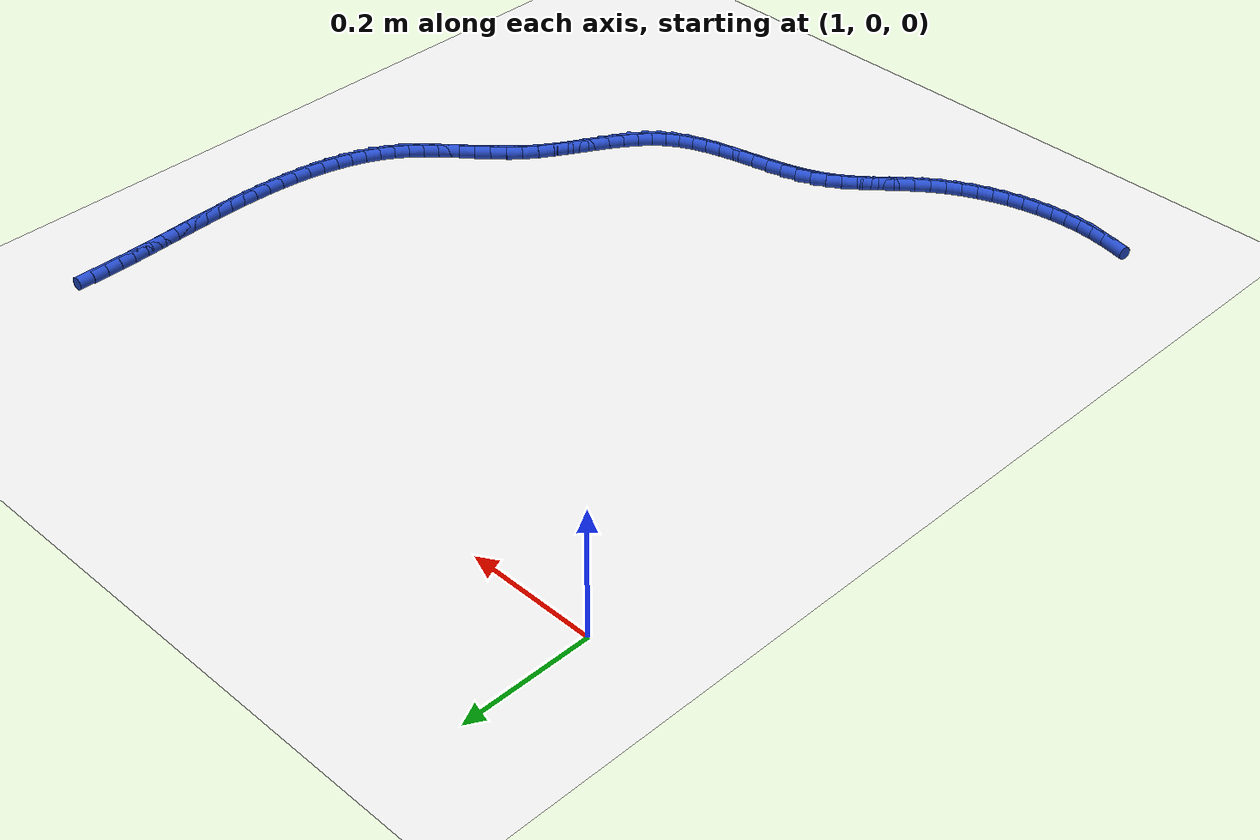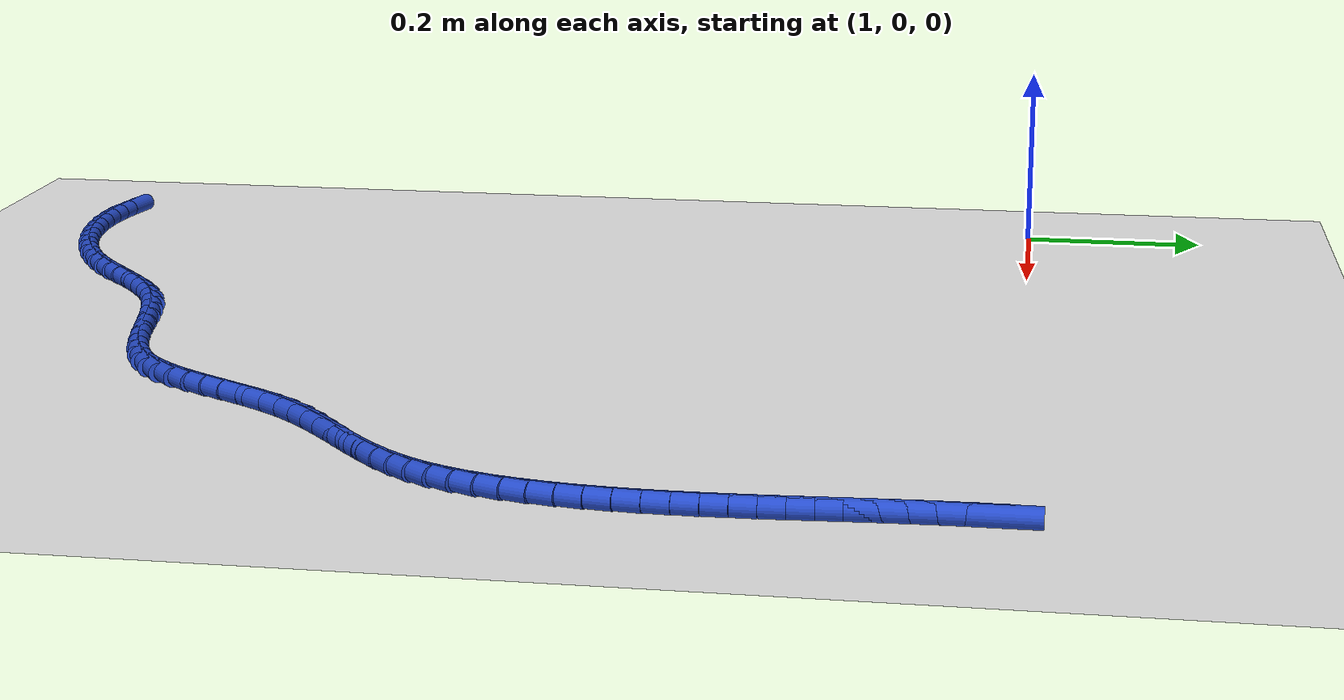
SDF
<sdf version="1.6">
 <world name="default">
  <model name="ground_plane">
   <static>1</static>
   <link name="link">
    <collision name="collision">
     <geometry><plane><normal>0 0 1</normal><size>100 100</size></plane></geometry>
     <surface><friction><ode><mu>100</mu><mu2>50</mu2></ode></friction></surface>
    </collision>
    <visual name="visual">
     <cast_shadows>0</cast_shadows>
     <geometry><plane><normal>0 0 1</normal><size>100 100</size></plane></geometry>
     <material>
      <script><uri>file://media/materials/scripts/gazebo.material</uri><name>Gazebo/WhiteGlow</name></script>
     </material>
    </visual>
   </link>
  </model>
  <model name="line">
   <link name="link_140">
    <pose>2.022038972773728 -0.015050323462694542 0.01 0 1.57 1.5670162806603292</pose>
    <collision name="collision">
     <geometry><cylinder><radius>0.01</radius><length>0.08</length></cylinder></geometry>
    </collision>
    <visual name="visual">
     <material>
      <script><name>Gazebo/Blue</name><uri>file://media/materials/scripts/gazebo.material</uri></script>
     </material>
     <geometry><cylinder><radius>0.01</radius><length>0.08</length></cylinder></geometry>
    </visual>
   </link>
   <link name="link_141">
    <pose>2.0219490826086957 -0.03883038690440917 0.01 0 1.57 -1.5543556046746971</pose>
    <collision name="collision">
     <geometry><cylinder><radius>0.01</radius><length>0.08</length></cylinder></geometry>
    </collision>
    <visual name="visual">
     <material>
      <script><name>Gazebo/Blue</name><uri>file://media/materials/scripts/gazebo.material</uri></script>
     </material>
     <geometry><cylinder><radius>0.01</radius><length>0.08</length></cylinder></geometry>
    </visual>
   </link>
   <link name="link_142">
    <pose>2.022337837206336 -0.062474091099531164 0.01 0 1.57 -1.538193456570751</pose>
    <collision name="collision">
     <geometry><cylinder><radius>0.01</radius><length>0.08</length></cylinder></geometry>
    </collision>
    <visual name="visual">
     <material>
      <script><name>Gazebo/Blue</name><uri>file://media/materials/scripts/gazebo.material</uri></script>
     </material>
     <geometry><cylinder><radius>0.01</radius><length>0.08</length></cylinder></geometry>
    </visual>
   </link>
   <link name="link_143">
    <pose>2.02310553544008 -0.08601269986745534 0.01 0 1.57 -1.5262083538959361</pose>
    <collision name="collision">
     <geometry><cylinder><radius>0.01</radius><length>0.08</length></cylinder></geometry>
    </collision>
    <visual name="visual">
     <material>
      <script><name>Gazebo/Blue</name><uri>file://media/materials/scripts/gazebo.material</uri></script>
     </material>
     <geometry><cylinder><radius>0.01</radius><length>0.08</length></cylinder></geometry>
    </visual>
   </link>
   <link name="link_144">
    <pose>2.024152476183357 -0.10947747702757644 0.01 0 1.57 -1.518480042508574</pose>
    <collision name="collision">
     <geometry><cylinder><radius>0.01</radius><length>0.08</length></cylinder></geometry>
    </collision>
    <visual name="visual">
     <material>
      <script><name>Gazebo/Blue</name><uri>file://media/materials/scripts/gazebo.material</uri></script>
     </material>
     <geometry><cylinder><radius>0.01</radius><length>0.08</length></cylinder></geometry>
    </visual>
   </link>
   <link name="link_145">
    <pose>2.0253789583095974 -0.13289968639928929 0.01 0 1.57 -1.5150543939528607</pose>
    <collision name="collision">
     <geometry><cylinder><radius>0.01</radius><length>0.08</length></cylinder></geometry>
    </collision>
    <visual name="visual">
     <material>
      <script><name>Gazebo/Blue</name><uri>file://media/materials/scripts/gazebo.material</uri></script>
     </material>
     <geometry><cylinder><radius>0.01</radius><length>0.08</length></cylinder></geometry>
    </visual>
   </link>
   <link name="link_146">
    <pose>2.02668528069223 -0.15631059180198933 0.01 0 1.57 -1.515946830316405</pose>
    <collision name="collision">
     <geometry><cylinder><radius>0.01</radius><length>0.08</length></cylinder></geometry>
    </collision>
    <visual name="visual">
     <material>
      <script><name>Gazebo/Blue</name><uri>file://media/materials/scripts/gazebo.material</uri></script>
     </material>
     <geometry><cylinder><radius>0.01</radius><length>0.08</length></cylinder></geometry>
    </visual>
   </link>
   <link name="link_147">
    <pose>2.0279717422046866 -0.17974145705506994 0.01 0 1.57 -1.521143997232985</pose>
    <collision name="collision">
     <geometry><cylinder><radius>0.01</radius><length>0.08</length></cylinder></geometry>
    </collision>
    <visual name="visual">
     <material>
      <script><name>Gazebo/Blue</name><uri>file://media/materials/scripts/gazebo.material</uri></script>
     </material>
     <geometry><cylinder><radius>0.01</radius><length>0.08</length></cylinder></geometry>
    </visual>
   </link>
   <link name="link_148">
    <pose>2.0291386417203956 -0.20322354597792655 0.01 0 1.57 -1.5306035377876541</pose>
    <collision name="collision">
     <geometry><cylinder><radius>0.01</radius><length>0.08</length></cylinder></geometry>
    </collision>
    <visual name="visual">
     <material>
      <script><name>Gazebo/Blue</name><uri>file://media/materials/scripts/gazebo.material</uri></script>
     </material>
     <geometry><cylinder><radius>0.01</radius><length>0.08</length></cylinder></geometry>
    </visual>
   </link>
   <link name="link_149">
    <pose>2.0300862781127877 -0.22678812238995402 0.01 0 1.57 -1.5442520332553993</pose>
    <collision name="collision">
     <geometry><cylinder><radius>0.01</radius><length>0.08</length></cylinder></geometry>
    </collision>
    <visual name="visual">
     <material>
      <script><name>Gazebo/Blue</name><uri>file://media/materials/scripts/gazebo.material</uri></script>
     </material>
     <geometry><cylinder><radius>0.01</radius><length>0.08</length></cylinder></geometry>
    </visual>
   </link>
   <link name="link_150">
    <pose>2.0307149502552937 -0.2504664501105471 0.01 0 1.57 -1.561981387264445</pose>
    <collision name="collision">
     <geometry><cylinder><radius>0.01</radius><length>0.08</length></cylinder></geometry>
    </collision>
    <visual name="visual">
     <material>
      <script><name>Gazebo/Blue</name><uri>file://media/materials/scripts/gazebo.material</uri></script>
     </material>
     <geometry><cylinder><radius>0.01</radius><length>0.08</length></cylinder></geometry>
    </visual>
   </link>
   <link name="link_151">
    <pose>2.0309249570213415 -0.2742897929591005 0.01 0 1.57 1.5579485089084004</pose>
    <collision name="collision">
     <geometry><cylinder><radius>0.01</radius><length>0.08</length></cylinder></geometry>
    </collision>
    <visual name="visual">
     <material>
      <script><name>Gazebo/Blue</name><uri>file://media/materials/scripts/gazebo.material</uri></script>
     </material>
     <geometry><cylinder><radius>0.01</radius><length>0.08</length></cylinder></geometry>
    </visual>
   </link>
   <link name="link_152">
    <pose>2.030616597284363 -0.29828941475500903 0.01 0 1.57 1.5325441874326569</pose>
    <collision name="collision">
     <geometry><cylinder><radius>0.01</radius><length>0.08</length></cylinder></geometry>
    </collision>
    <visual name="visual">
     <material>
      <script><name>Gazebo/Blue</name><uri>file://media/materials/scripts/gazebo.material</uri></script>
     </material>
     <geometry><cylinder><radius>0.01</radius><length>0.08</length></cylinder></geometry>
    </visual>
   </link>
   <link name="link_153">
    <pose>2.029690169625127 -0.3224965773571505 0.01 0 1.57 1.503290881922368</pose>
    <collision name="collision">
     <geometry><cylinder><radius>0.01</radius><length>0.08</length></cylinder></geometry>
    </collision>
    <visual name="visual">
     <material>
      <script><name>Gazebo/Blue</name><uri>file://media/materials/scripts/gazebo.material</uri></script>
     </material>
     <geometry><cylinder><radius>0.01</radius><length>0.08</length></cylinder></geometry>
    </visual>
   </link>
   <link name="link_154">
    <pose>2.028040087826346 -0.34690312077078733 0.01 0 1.57 1.4689175266654038</pose>
    <collision name="collision">
     <geometry><cylinder><radius>0.01</radius><length>0.08</length></cylinder></geometry>
    </collision>
    <visual name="visual">
     <material>
      <script><name>Gazebo/Blue</name><uri>file://media/materials/scripts/gazebo.material</uri></script>
     </material>
     <geometry><cylinder><radius>0.01</radius><length>0.08</length></cylinder></geometry>
    </visual>
   </link>
   <link name="link_155">
    <pose>2.025539769836637 -0.3713602353662128 0.01 0 1.57 1.4286391914802576</pose>
    <collision name="collision">
     <geometry><cylinder><radius>0.01</radius><length>0.08</length></cylinder></geometry>
    </collision>
    <visual name="visual">
     <material>
      <script><name>Gazebo/Blue</name><uri>file://media/materials/scripts/gazebo.material</uri></script>
     </material>
     <geometry><cylinder><radius>0.01</radius><length>0.08</length></cylinder></geometry>
    </visual>
   </link>
   <link name="link_156">
    <pose>2.022057953099709 -0.39568775713629467 0.01 0 1.57 1.3817807939071034</pose>
    <collision name="collision">
     <geometry><cylinder><radius>0.01</radius><length>0.08</length></cylinder></geometry>
    </collision>
    <visual name="visual">
     <material>
      <script><name>Gazebo/Blue</name><uri>file://media/materials/scripts/gazebo.material</uri></script>
     </material>
     <geometry><cylinder><radius>0.01</radius><length>0.08</length></cylinder></geometry>
    </visual>
   </link>
   <link name="link_157">
    <pose>2.017463375059273 -0.4197055220739029 0.01 0 1.57 1.3275528948902298</pose>
    <collision name="collision">
     <geometry><cylinder><radius>0.01</radius><length>0.08</length></cylinder></geometry>
    </collision>
    <visual name="visual">
     <material>
      <script><name>Gazebo/Blue</name><uri>file://media/materials/scripts/gazebo.material</uri></script>
     </material>
     <geometry><cylinder><radius>0.01</radius><length>0.08</length></cylinder></geometry>
    </visual>
   </link>
   <link name="link_158">
    <pose>2.0116247731590384 -0.4432333661719067 0.01 0 1.57 1.2650905727018824</pose>
    <collision name="collision">
     <geometry><cylinder><radius>0.01</radius><length>0.08</length></cylinder></geometry>
    </collision>
    <visual name="visual">
     <material>
      <script><name>Gazebo/Blue</name><uri>file://media/materials/scripts/gazebo.material</uri></script>
     </material>
     <geometry><cylinder><radius>0.01</radius><length>0.08</length></cylinder></geometry>
    </visual>
   </link>
   <link name="link_159">
    <pose>2.0044108848427133 -0.466091125423175 0.01 0 1.57 1.1935284028011537</pose>
    <collision name="collision">
     <geometry><cylinder><radius>0.01</radius><length>0.08</length></cylinder></geometry>
    </collision>
    <visual name="visual">
     <material>
      <script><name>Gazebo/Blue</name><uri>file://media/materials/scripts/gazebo.material</uri></script>
     </material>
     <geometry><cylinder><radius>0.01</radius><length>0.08</length></cylinder></geometry>
    </visual>
   </link>
   <link name="link_160">
    <pose>1.9956904475540078 -0.48809863582057705 0.01 0 1.57 1.1121302810052873</pose>
    <collision name="collision">
     <geometry><cylinder><radius>0.01</radius><length>0.08</length></cylinder></geometry>
    </collision>
    <visual name="visual">
     <material>
      <script><name>Gazebo/Blue</name><uri>file://media/materials/scripts/gazebo.material</uri></script>
     </material>
     <geometry><cylinder><radius>0.01</radius><length>0.08</length></cylinder></geometry>
    </visual>
   </link>
   <link name="link_161">
    <pose>1.9853321987366326 -0.5090757333569822 0.01 0 1.57 1.0204887729650012</pose>
    <collision name="collision">
     <geometry><cylinder><radius>0.01</radius><length>0.08</length></cylinder></geometry>
    </collision>
    <visual name="visual">
     <material>
      <script><name>Gazebo/Blue</name><uri>file://media/materials/scripts/gazebo.material</uri></script>
     </material>
     <geometry><cylinder><radius>0.01</radius><length>0.08</length></cylinder></geometry>
    </visual>
   </link>
   <link name="link_162">
    <pose>1.973204875834297 -0.5288422540252598 0.01 0 1.57 0.9235240521129535</pose>
    <collision name="collision">
     <geometry><cylinder><radius>0.01</radius><length>0.08</length></cylinder></geometry>
    </collision>
    <visual name="visual">
     <material>
      <script><name>Gazebo/Blue</name><uri>file://media/materials/scripts/gazebo.material</uri></script>
     </material>
     <geometry><cylinder><radius>0.01</radius><length>0.08</length></cylinder></geometry>
    </visual>
   </link>
   <link name="link_163">
    <pose>1.9592563293264569 -0.5472949289328212 0.01 0 1.57 0.8424131123312291</pose>
    <collision name="collision">
     <geometry><cylinder><radius>0.01</radius><length>0.08</length></cylinder></geometry>
    </collision>
    <visual name="visual">
     <material>
      <script><name>Gazebo/Blue</name><uri>file://media/materials/scripts/gazebo.material</uri></script>
     </material>
     <geometry><cylinder><radius>0.01</radius><length>0.08</length></cylinder></geometry>
    </visual>
   </link>
   <link name="link_164">
    <pose>1.9437697213651774 -0.5646564004509997 0.01 0 1.57 0.7831880647502245</pose>
    <collision name="collision">
     <geometry><cylinder><radius>0.01</radius><length>0.08</length></cylinder></geometry>
    </collision>
    <visual name="visual">
     <material>
      <script><name>Gazebo/Blue</name><uri>file://media/materials/scripts/gazebo.material</uri></script>
     </material>
     <geometry><cylinder><radius>0.01</radius><length>0.08</length></cylinder></geometry>
    </visual>
   </link>
   <link name="link_165">
    <pose>1.9271170345380697 -0.5812356413200783 0.01 0 1.57 0.7454585070696972</pose>
    <collision name="collision">
     <geometry><cylinder><radius>0.01</radius><length>0.08</length></cylinder></geometry>
    </collision>
    <visual name="visual">
     <material>
      <script><name>Gazebo/Blue</name><uri>file://media/materials/scripts/gazebo.material</uri></script>
     </material>
     <geometry><cylinder><radius>0.01</radius><length>0.08</length></cylinder></geometry>
    </visual>
   </link>
   <link name="link_166">
    <pose>1.9096702520349675 -0.5973416248656823 0.01 0 1.57 0.7284600233644692</pose>
    <collision name="collision">
     <geometry><cylinder><radius>0.01</radius><length>0.08</length></cylinder></geometry>
    </collision>
    <visual name="visual">
     <material>
      <script><name>Gazebo/Blue</name><uri>file://media/materials/scripts/gazebo.material</uri></script>
     </material>
     <geometry><cylinder><radius>0.01</radius><length>0.08</length></cylinder></geometry>
    </visual>
   </link>
   <link name="link_167">
    <pose>1.8918013570457048 -0.613283324413437 0.01 0 1.57 0.7315577864843672</pose>
    <collision name="collision">
     <geometry><cylinder><radius>0.01</radius><length>0.08</length></cylinder></geometry>
    </collision>
    <visual name="visual">
     <material>
      <script><name>Gazebo/Blue</name><uri>file://media/materials/scripts/gazebo.material</uri></script>
     </material>
     <geometry><cylinder><radius>0.01</radius><length>0.08</length></cylinder></geometry>
    </visual>
   </link>
   <link name="link_168">
    <pose>1.8738823327601166 -0.6293697132889682 0.01 0 1.57 0.754441304767688</pose>
    <collision name="collision">
     <geometry><cylinder><radius>0.01</radius><length>0.08</length></cylinder></geometry>
    </collision>
    <visual name="visual">
     <material>
      <script><name>Gazebo/Blue</name><uri>file://media/materials/scripts/gazebo.material</uri></script>
     </material>
     <geometry><cylinder><radius>0.01</radius><length>0.08</length></cylinder></geometry>
    </visual>
   </link>
   <link name="link_169">
    <pose>1.8562851623680363 -0.6459097648179004 0.01 0 1.57 0.797072601011929</pose>
    <collision name="collision">
     <geometry><cylinder><radius>0.01</radius><length>0.08</length></cylinder></geometry>
    </collision>
    <visual name="visual">
     <material>
      <script><name>Gazebo/Blue</name><uri>file://media/materials/scripts/gazebo.material</uri></script>
     </material>
     <geometry><cylinder><radius>0.01</radius><length>0.08</length></cylinder></geometry>
    </visual>
   </link>
   <link name="link_170">
    <pose>1.8393818290592994 -0.6632124523258596 0.01 0 1.57 0.8594120749253602</pose>
    <collision name="collision">
     <geometry><cylinder><radius>0.01</radius><length>0.08</length></cylinder></geometry>
    </collision>
    <visual name="visual">
     <material>
      <script><name>Gazebo/Blue</name><uri>file://media/materials/scripts/gazebo.material</uri></script>
     </material>
     <geometry><cylinder><radius>0.01</radius><length>0.08</length></cylinder></geometry>
    </visual>
   </link>
   <link name="link_171">
    <pose>1.823544316023739 -0.6815867491384705 0.01 0 1.57 0.9353974966078017</pose>
    <collision name="collision">
     <geometry><cylinder><radius>0.01</radius><length>0.08</length></cylinder></geometry>
    </collision>
    <visual name="visual">
     <material>
      <script><name>Gazebo/Blue</name><uri>file://media/materials/scripts/gazebo.material</uri></script>
     </material>
     <geometry><cylinder><radius>0.01</radius><length>0.08</length></cylinder></geometry>
    </visual>
   </link>
   <link name="link_172">
    <pose>1.8090478268810959 -0.701245234507294 0.01 0 1.57 0.9957780807338751</pose>
    <collision name="collision">
     <geometry><cylinder><radius>0.01</radius><length>0.08</length></cylinder></geometry>
    </collision>
    <visual name="visual">
     <material>
      <script><name>Gazebo/Blue</name><uri>file://media/materials/scripts/gazebo.material</uri></script>
     </material>
     <geometry><cylinder><radius>0.01</radius><length>0.08</length></cylinder></geometry>
    </visual>
   </link>
   <link name="link_173">
    <pose>1.7956632455652557 -0.7218981768232118 0.01 0 1.57 1.032155326076282</pose>
    <collision name="collision">
     <geometry><cylinder><radius>0.01</radius><length>0.08</length></cylinder></geometry>
    </collision>
    <visual name="visual">
     <material>
      <script><name>Gazebo/Blue</name><uri>file://media/materials/scripts/gazebo.material</uri></script>
     </material>
     <geometry><cylinder><radius>0.01</radius><length>0.08</length></cylinder></geometry>
    </visual>
   </link>
   <link name="link_174">
    <pose>1.782997710763454 -0.7430927514666867 0.01 0 1.57 1.0453839866946741</pose>
    <collision name="collision">
     <geometry><cylinder><radius>0.01</radius><length>0.08</length></cylinder></geometry>
    </collision>
    <visual name="visual">
     <material>
      <script><name>Gazebo/Blue</name><uri>file://media/materials/scripts/gazebo.material</uri></script>
     </material>
     <geometry><cylinder><radius>0.01</radius><length>0.08</length></cylinder></geometry>
    </visual>
   </link>
   <link name="link_175">
    <pose>1.770658274962126 -0.7643760479607441 0.01 0 1.57 1.0354954585586587</pose>
    <collision name="collision">
     <geometry><cylinder><radius>0.01</radius><length>0.08</length></cylinder></geometry>
    </collision>
    <visual name="visual">
     <material>
      <script><name>Gazebo/Blue</name><uri>file://media/materials/scripts/gazebo.material</uri></script>
     </material>
     <geometry><cylinder><radius>0.01</radius><length>0.08</length></cylinder></geometry>
    </visual>
   </link>
   <link name="link_176">
    <pose>1.7582519906477097 -0.7852951558284096 0.01 0 1.57 1.0014550892692518</pose>
    <collision name="collision">
     <geometry><cylinder><radius>0.01</radius><length>0.08</length></cylinder></geometry>
    </collision>
    <visual name="visual">
     <material>
      <script><name>Gazebo/Blue</name><uri>file://media/materials/scripts/gazebo.material</uri></script>
     </material>
     <geometry><cylinder><radius>0.01</radius><length>0.08</length></cylinder></geometry>
    </visual>
   </link>
   <link name="link_177">
    <pose>1.745385910306641 -0.8053971645927083 0.01 0 1.57 0.9412077805995258</pose>
    <collision name="collision">
     <geometry><cylinder><radius>0.01</radius><length>0.08</length></cylinder></geometry>
    </collision>
    <visual name="visual">
     <material>
      <script><name>Gazebo/Blue</name><uri>file://media/materials/scripts/gazebo.material</uri></script>
     </material>
     <geometry><cylinder><radius>0.01</radius><length>0.08</length></cylinder></geometry>
    </visual>
   </link>
   <link name="link_178">
    <pose>1.731667086425357 -0.8242291637766656 0.01 0 1.57 0.8521626419381544</pose>
    <collision name="collision">
     <geometry><cylinder><radius>0.01</radius><length>0.08</length></cylinder></geometry>
    </collision>
    <visual name="visual">
     <material>
      <script><name>Gazebo/Blue</name><uri>file://media/materials/scripts/gazebo.material</uri></script>
     </material>
     <geometry><cylinder><radius>0.01</radius><length>0.08</length></cylinder></geometry>
    </visual>
   </link>
   <link name="link_179">
    <pose>1.7167025714902953 -0.8413382429033068 0.01 0 1.57 0.7324959696731949</pose>
    <collision name="collision">
     <geometry><cylinder><radius>0.01</radius><length>0.08</length></cylinder></geometry>
    </collision>
    <visual name="visual">
     <material>
      <script><name>Gazebo/Blue</name><uri>file://media/materials/scripts/gazebo.material</uri></script>
     </material>
     <geometry><cylinder><radius>0.01</radius><length>0.08</length></cylinder></geometry>
    </visual>
   </link>
   <link name="link_180">
    <pose>1.7000994188470029 -0.8562714925711812 0.01 0 1.57 0.592438878530797</pose>
    <collision name="collision">
     <geometry><cylinder><radius>0.01</radius><length>0.08</length></cylinder></geometry>
    </collision>
    <visual name="visual">
     <material>
      <script><name>Gazebo/Blue</name><uri>file://media/materials/scripts/gazebo.material</uri></script>
     </material>
     <geometry><cylinder><radius>0.01</radius><length>0.08</length></cylinder></geometry>
    </visual>
   </link>
   <link name="link_181">
    <pose>1.6815885327586255 -0.8687310528150409 0.01 0 1.57 0.4700718341036253</pose>
    <collision name="collision">
     <geometry><cylinder><radius>0.01</radius><length>0.08</length></cylinder></geometry>
    </collision>
    <visual name="visual">
     <material>
      <script><name>Gazebo/Blue</name><uri>file://media/materials/scripts/gazebo.material</uri></script>
     </material>
     <geometry><cylinder><radius>0.01</radius><length>0.08</length></cylinder></geometry>
    </visual>
   </link>
   <link name="link_182">
    <pose>1.6613681647904586 -0.8790041375400142 0.01 0 1.57 0.3750421185646608</pose>
    <collision name="collision">
     <geometry><cylinder><radius>0.01</radius><length>0.08</length></cylinder></geometry>
    </collision>
    <visual name="visual">
     <material>
      <script><name>Gazebo/Blue</name><uri>file://media/materials/scripts/gazebo.material</uri></script>
     </material>
     <geometry><cylinder><radius>0.01</radius><length>0.08</length></cylinder></geometry>
    </visual>
   </link>
   <link name="link_183">
    <pose>1.6397467822108107 -0.8875159401102789 0.01 0 1.57 0.3059947165005518</pose>
    <collision name="collision">
     <geometry><cylinder><radius>0.01</radius><length>0.08</length></cylinder></geometry>
    </collision>
    <visual name="visual">
     <material>
      <script><name>Gazebo/Blue</name><uri>file://media/materials/scripts/gazebo.material</uri></script>
     </material>
     <geometry><cylinder><radius>0.01</radius><length>0.08</length></cylinder></geometry>
    </visual>
   </link>
   <link name="link_184">
    <pose>1.617032852287992 -0.8946916538900148 0.01 0 1.57 0.2605500390333154</pose>
    <collision name="collision">
     <geometry><cylinder><radius>0.01</radius><length>0.08</length></cylinder></geometry>
    </collision>
    <visual name="visual">
     <material>
      <script><name>Gazebo/Blue</name><uri>file://media/materials/scripts/gazebo.material</uri></script>
     </material>
     <geometry><cylinder><radius>0.01</radius><length>0.08</length></cylinder></geometry>
    </visual>
   </link>
   <link name="link_185">
    <pose>1.5935348422903104 -0.9009564722433995 0.01 0 1.57 0.23654837965093037</pose>
    <collision name="collision">
     <geometry><cylinder><radius>0.01</radius><length>0.08</length></cylinder></geometry>
    </collision>
    <visual name="visual">
     <material>
      <script><name>Gazebo/Blue</name><uri>file://media/materials/scripts/gazebo.material</uri></script>
     </material>
     <geometry><cylinder><radius>0.01</radius><length>0.08</length></cylinder></geometry>
    </visual>
   </link>
   <link name="link_186">
    <pose>1.5695612194860757 -0.9067355885346122 0.01 0 1.57 0.23259840832941814</pose>
    <collision name="collision">
     <geometry><cylinder><radius>0.01</radius><length>0.08</length></cylinder></geometry>
    </collision>
    <visual name="visual">
     <material>
      <script><name>Gazebo/Blue</name><uri>file://media/materials/scripts/gazebo.material</uri></script>
     </material>
     <geometry><cylinder><radius>0.01</radius><length>0.08</length></cylinder></geometry>
    </visual>
   </link>
   <link name="link_187">
    <pose>1.5454204511435972 -0.9124541961278314 0.01 0 1.57 0.2482478413186637</pose>
    <collision name="collision">
     <geometry><cylinder><radius>0.01</radius><length>0.08</length></cylinder></geometry>
    </collision>
    <visual name="visual">
     <material>
      <script><name>Gazebo/Blue</name><uri>file://media/materials/scripts/gazebo.material</uri></script>
     </material>
     <geometry><cylinder><radius>0.01</radius><length>0.08</length></cylinder></geometry>
    </visual>
   </link>
   <link name="link_188">
    <pose>1.5214210045311836 -0.918537488387235 0.01 0 1.57 0.2839709931997615</pose>
    <collision name="collision">
     <geometry><cylinder><radius>0.01</radius><length>0.08</length></cylinder></geometry>
    </collision>
    <visual name="visual">
     <material>
      <script><name>Gazebo/Blue</name><uri>file://media/materials/scripts/gazebo.material</uri></script>
     </material>
     <geometry><cylinder><radius>0.01</radius><length>0.08</length></cylinder></geometry>
    </visual>
   </link>
   <link name="link_189">
    <pose>1.4978713469171445 -0.9254106586770027 0.01 0 1.57 0.34101676272027653</pose>
    <collision name="collision">
     <geometry><cylinder><radius>0.01</radius><length>0.08</length></cylinder></geometry>
    </collision>
    <visual name="visual">
     <material>
      <script><name>Gazebo/Blue</name><uri>file://media/materials/scripts/gazebo.material</uri></script>
     </material>
     <geometry><cylinder><radius>0.01</radius><length>0.08</length></cylinder></geometry>
    </visual>
   </link>
   <link name="link_190">
    <pose>1.4750799455697883 -0.9334989003613122 0.01 0 1.57 0.4210304031233139</pose>
    <collision name="collision">
     <geometry><cylinder><radius>0.01</radius><length>0.08</length></cylinder></geometry>
    </collision>
    <visual name="visual">
     <material>
      <script><name>Gazebo/Blue</name><uri>file://media/materials/scripts/gazebo.material</uri></script>
     </material>
     <geometry><cylinder><radius>0.01</radius><length>0.08</length></cylinder></geometry>
    </visual>
   </link>
   <link name="link_191">
    <pose>1.4533552677574253 -0.9432274068043425 0.01 0 1.57 0.5226358805914063</pose>
    <collision name="collision">
     <geometry><cylinder><radius>0.01</radius><length>0.08</length></cylinder></geometry>
    </collision>
    <visual name="visual">
     <material>
      <script><name>Gazebo/Blue</name><uri>file://media/materials/scripts/gazebo.material</uri></script>
     </material>
     <geometry><cylinder><radius>0.01</radius><length>0.08</length></cylinder></geometry>
    </visual>
   </link>
   <link name="link_192">
    <pose>1.4329691878014688 -0.9549711572158961 0.01 0 1.57 0.616289530518538</pose>
    <collision name="collision">
     <geometry><cylinder><radius>0.01</radius><length>0.08</length></cylinder></geometry>
    </collision>
    <visual name="visual">
     <material>
      <script><name>Gazebo/Blue</name><uri>file://media/materials/scripts/gazebo.material</uri></script>
     </material>
     <geometry><cylinder><radius>0.01</radius><length>0.08</length></cylinder></geometry>
    </visual>
   </link>
   <link name="link_193">
    <pose>1.4137923446059495 -0.9685545411731163 0.01 0 1.57 0.6823877784580501</pose>
    <collision name="collision">
     <geometry><cylinder><radius>0.01</radius><length>0.08</length></cylinder></geometry>
    </collision>
    <visual name="visual">
     <material>
      <script><name>Gazebo/Blue</name><uri>file://media/materials/scripts/gazebo.material</uri></script>
     </material>
     <geometry><cylinder><radius>0.01</radius><length>0.08</length></cylinder></geometry>
    </visual>
   </link>
   <link name="link_194">
    <pose>1.3954475431323736 -0.9834618616270302 0.01 0 1.57 0.7205246564629638</pose>
    <collision name="collision">
     <geometry><cylinder><radius>0.01</radius><length>0.08</length></cylinder></geometry>
    </collision>
    <visual name="visual">
     <material>
      <script><name>Gazebo/Blue</name><uri>file://media/materials/scripts/gazebo.material</uri></script>
     </material>
     <geometry><cylinder><radius>0.01</radius><length>0.08</length></cylinder></geometry>
    </visual>
   </link>
   <link name="link_195">
    <pose>1.377553926110153 -0.9991723960824145 0.01 0 1.57 0.7313272276624649</pose>
    <collision name="collision">
     <geometry><cylinder><radius>0.01</radius><length>0.08</length></cylinder></geometry>
    </collision>
    <visual name="visual">
     <material>
      <script><name>Gazebo/Blue</name><uri>file://media/materials/scripts/gazebo.material</uri></script>
     </material>
     <geometry><cylinder><radius>0.01</radius><length>0.08</length></cylinder></geometry>
    </visual>
   </link>
   <link name="link_196">
    <pose>1.3597306362686996 -1.0151654220440458 0.01 0 1.57 0.715311842106991</pose>
    <collision name="collision">
     <geometry><cylinder><radius>0.01</radius><length>0.08</length></cylinder></geometry>
    </collision>
    <visual name="visual">
     <material>
      <script><name>Gazebo/Blue</name><uri>file://media/materials/scripts/gazebo.material</uri></script>
     </material>
     <geometry><cylinder><radius>0.01</radius><length>0.08</length></cylinder></geometry>
    </visual>
   </link>
   <link name="link_197">
    <pose>1.3415968163374237 -1.0309202170166996 0.01 0 1.57 0.6726539750917021</pose>
    <collision name="collision">
     <geometry><cylinder><radius>0.01</radius><length>0.08</length></cylinder></geometry>
    </collision>
    <visual name="visual">
     <material>
      <script><name>Gazebo/Blue</name><uri>file://media/materials/scripts/gazebo.material</uri></script>
     </material>
     <geometry><cylinder><radius>0.01</radius><length>0.08</length></cylinder></geometry>
    </visual>
   </link>
   <link name="link_198">
    <pose>1.3227716090457367 -1.0459160585051537 0.01 0 1.57 0.6060706412641906</pose>
    <collision name="collision">
     <geometry><cylinder><radius>0.01</radius><length>0.08</length></cylinder></geometry>
    </collision>
    <visual name="visual">
     <material>
      <script><name>Gazebo/Blue</name><uri>file://media/materials/scripts/gazebo.material</uri></script>
     </material>
     <geometry><cylinder><radius>0.01</radius><length>0.08</length></cylinder></geometry>
    </visual>
   </link>
   <link name="link_199">
    <pose>1.302919901607624 -1.059674999984689 0.01 0 1.57 0.5342544257519394</pose>
    <collision name="collision">
     <geometry><cylinder><radius>0.01</radius><length>0.08</length></cylinder></geometry>
    </collision>
    <visual name="visual">
     <material>
      <script><name>Gazebo/Blue</name><uri>file://media/materials/scripts/gazebo.material</uri></script>
     </material>
     <geometry><cylinder><radius>0.01</radius><length>0.08</length></cylinder></geometry>
    </visual>
   </link>
   <link name="link_200">
    <pose>1.2820384538142693 -1.0720294311756215 0.01 0 1.57 0.4649377054697781</pose>
    <collision name="collision">
     <geometry><cylinder><radius>0.01</radius><length>0.08</length></cylinder></geometry>
    </collision>
    <visual name="visual">
     <material>
      <script><name>Gazebo/Blue</name><uri>file://media/materials/scripts/gazebo.material</uri></script>
     </material>
     <geometry><cylinder><radius>0.01</radius><length>0.08</length></cylinder></geometry>
    </visual>
   </link>
   <link name="link_201">
    <pose>1.260270376870272 -1.0829485959742848 0.01 0 1.57 0.3975955330207717</pose>
    <collision name="collision">
     <geometry><cylinder><radius>0.01</radius><length>0.08</length></cylinder></geometry>
    </collision>
    <visual name="visual">
     <material>
      <script><name>Gazebo/Blue</name><uri>file://media/materials/scripts/gazebo.material</uri></script>
     </material>
     <geometry><cylinder><radius>0.01</radius><length>0.08</length></cylinder></geometry>
    </visual>
   </link>
   <link name="link_202">
    <pose>1.2377594225205688 -1.0924023372505225 0.01 0 1.57 0.33164048524812256</pose>
    <collision name="collision">
     <geometry><cylinder><radius>0.01</radius><length>0.08</length></cylinder></geometry>
    </collision>
    <visual name="visual">
     <material>
      <script><name>Gazebo/Blue</name><uri>file://media/materials/scripts/gazebo.material</uri></script>
     </material>
     <geometry><cylinder><radius>0.01</radius><length>0.08</length></cylinder></geometry>
    </visual>
   </link>
   <link name="link_203">
    <pose>1.2146493425100953 -1.1003604978741797 0.01 0 1.57 0.2664685149810701</pose>
    <collision name="collision">
     <geometry><cylinder><radius>0.01</radius><length>0.08</length></cylinder></geometry>
    </collision>
    <visual name="visual">
     <material>
      <script><name>Gazebo/Blue</name><uri>file://media/materials/scripts/gazebo.material</uri></script>
     </material>
     <geometry><cylinder><radius>0.01</radius><length>0.08</length></cylinder></geometry>
    </visual>
   </link>
   <link name="link_204">
    <pose>1.1910838885837878 -1.1067929207151006 0.01 0 1.57 0.2014640693383801</pose>
    <collision name="collision">
     <geometry><cylinder><radius>0.01</radius><length>0.08</length></cylinder></geometry>
    </collision>
    <visual name="visual">
     <material>
      <script><name>Gazebo/Blue</name><uri>file://media/materials/scripts/gazebo.material</uri></script>
     </material>
     <geometry><cylinder><radius>0.01</radius><length>0.08</length></cylinder></geometry>
    </visual>
   </link>
   <link name="link_205">
    <pose>1.1672068124865822 -1.111669448643129 0.01 0 1.57 0.13600210392307366</pose>
    <collision name="collision">
     <geometry><cylinder><radius>0.01</radius><length>0.08</length></cylinder></geometry>
    </collision>
    <visual name="visual">
     <material>
      <script><name>Gazebo/Blue</name><uri>file://media/materials/scripts/gazebo.material</uri></script>
     </material>
     <geometry><cylinder><radius>0.01</radius><length>0.08</length></cylinder></geometry>
    </visual>
   </link>
   <link name="link_206">
    <pose>1.1431618659634155 -1.1149599245281103 0.01 0 1.57 0.06944906553329833</pose>
    <collision name="collision">
     <geometry><cylinder><radius>0.01</radius><length>0.08</length></cylinder></geometry>
    </collision>
    <visual name="visual">
     <material>
      <script><name>Gazebo/Blue</name><uri>file://media/materials/scripts/gazebo.material</uri></script>
     </material>
     <geometry><cylinder><radius>0.01</radius><length>0.08</length></cylinder></geometry>
    </visual>
   </link>
   <link name="link_207">
    <pose>1.1190928007592236 -1.116634191239888 0.01 0 1.57 0.0011649710788029853</pose>
    <collision name="collision">
     <geometry><cylinder><radius>0.01</radius><length>0.08</length></cylinder></geometry>
    </collision>
    <visual name="visual">
     <material>
      <script><name>Gazebo/Blue</name><uri>file://media/materials/scripts/gazebo.material</uri></script>
     </material>
     <geometry><cylinder><radius>0.01</radius><length>0.08</length></cylinder></geometry>
    </visual>
   </link>
   <link name="link_208">
    <pose>1.0951433686189416 -1.116662091648307 0.01 0 1.57 -0.0694129703317078</pose>
    <collision name="collision">
     <geometry><cylinder><radius>0.01</radius><length>0.08</length></cylinder></geometry>
    </collision>
    <visual name="visual">
     <material>
      <script><name>Gazebo/Blue</name><uri>file://media/materials/scripts/gazebo.material</uri></script>
     </material>
     <geometry><cylinder><radius>0.01</radius><length>0.08</length></cylinder></geometry>
    </visual>
   </link>
   <link name="link_209">
    <pose>1.0714560064160996 -1.1150152356897631 0.01 0 1.57 -0.13809620096906994</pose>
    <collision name="collision">
     <geometry><cylinder><radius>0.01</radius><length>0.08</length></cylinder></geometry>
    </collision>
    <visual name="visual">
     <material>
      <script><name>Gazebo/Blue</name><uri>file://media/materials/scripts/gazebo.material</uri></script>
     </material>
     <geometry><cylinder><radius>0.01</radius><length>0.08</length></cylinder></geometry>
    </visual>
   </link>
   <link name="link_210">
    <pose>1.048096184808468 -1.1117686688340822 0.01 0 1.57 -0.19720292921179405</pose>
    <collision name="collision">
     <geometry><cylinder><radius>0.01</radius><length>0.08</length></cylinder></geometry>
    </collision>
    <visual name="visual">
     <material>
      <script><name>Gazebo/Blue</name><uri>file://media/materials/scripts/gazebo.material</uri></script>
     </material>
     <geometry><cylinder><radius>0.01</radius><length>0.08</length></cylinder></geometry>
    </visual>
   </link>
  </model>
 </world>
</sdf>
